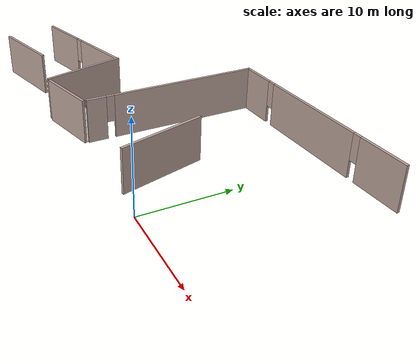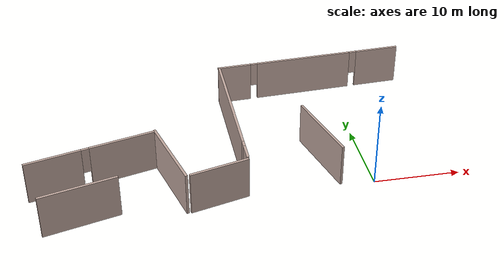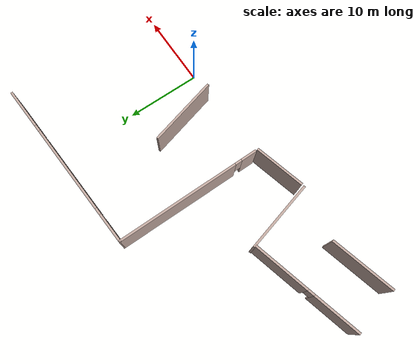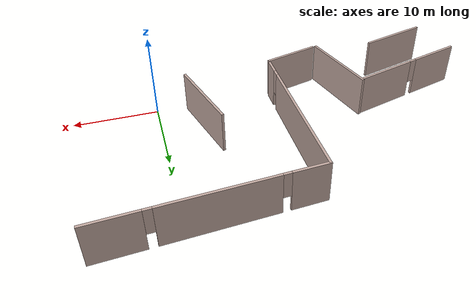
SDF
<sdf version="1.6">
 <model name="engineering_2F">
  <link name="Wall_23">
   <pose>-2.64438 20.8898 0 0 0 -3.08217</pose>
   <visual name="Wall_23_Visual_0">
    <pose>-9.13368 0 2.5 0 -0 0</pose>
    <geometry><box><size>5.59954 0.3 5</size></box></geometry>
    <material>
     <script><uri>file://media/materials/scripts/gazebo.material</uri><name>Gazebo/Grey</name></script>
     <ambient>0.760784 0.662745 0.627451 1</ambient>
     <diffuse>0.7 0.7 0.7 1</diffuse>
     <specular>0.01 0.01 0.01 1</specular>
     <emissive>0 0 0 1</emissive>
    </material>
   </visual>
   <visual name="Wall_23_Visual_2">
    <pose>9.85615 0 2.5 0 -0 0</pose>
    <geometry><box><size>4.15459 0.3 5</size></box></geometry>
    <material>
     <script><uri>file://media/materials/scripts/gazebo.material</uri><name>Gazebo/Grey</name></script>
     <ambient>0.760784 0.662745 0.627451 1</ambient>
     <diffuse>0.7 0.7 0.7 1</diffuse>
     <specular>0.01 0.01 0.01 1</specular>
     <emissive>0 0 0 1</emissive>
    </material>
   </visual>
   <visual name="Wall_23_Visual_1">
    <pose>0.722472 0 2.5 0 -0 0</pose>
    <geometry><box><size>12.3128 0.3 5</size></box></geometry>
    <material>
     <script><uri>file://media/materials/scripts/gazebo.material</uri><name>Gazebo/Grey</name></script>
     <ambient>0.760784 0.662745 0.627451 1</ambient>
     <diffuse>0.7 0.7 0.7 1</diffuse>
     <specular>0.01 0.01 0.01 1</specular>
     <emissive>0 0 0 1</emissive>
    </material>
   </visual>
   <visual name="Wall_23_Visual_3">
    <pose>-5.88391 0 3.5 0 -0 0</pose>
    <geometry><box><size>0.9 0.3 3</size></box></geometry>
    <material>
     <script><uri>file://media/materials/scripts/gazebo.material</uri><name>Gazebo/Grey</name></script>
     <ambient>0.760784 0.662745 0.627451 1</ambient>
     <diffuse>0.7 0.7 0.7 1</diffuse>
     <specular>0.01 0.01 0.01 1</specular>
     <emissive>0 0 0 1</emissive>
    </material>
   </visual>
   <visual name="Wall_23_Visual_4">
    <pose>7.32885 0 3.5 0 -0 0</pose>
    <geometry><box><size>0.9 0.3 3</size></box></geometry>
    <material>
     <script><uri>file://media/materials/scripts/gazebo.material</uri><name>Gazebo/Grey</name></script>
     <ambient>0.760784 0.662745 0.627451 1</ambient>
     <diffuse>0.7 0.7 0.7 1</diffuse>
     <specular>0.01 0.01 0.01 1</specular>
     <emissive>0 0 0 1</emissive>
    </material>
   </visual>
   <collision name="Wall_23_Collision_3">
    <pose>-5.88391 0 3.5 0 -0 0</pose>
    <geometry><box><size>0.9 0.3 3</size></box></geometry>
    <surface>
     <friction>
      <ode><mu>1</mu><mu2>1</mu2><fdir1>0 0 0</fdir1><slip1>0</slip1><slip2>0</slip2></ode>
      <torsional>
       <coefficient>1</coefficient>
       <patch_radius>0</patch_radius>
       <surface_radius>0</surface_radius>
       <use_patch_radius>1</use_patch_radius>
       <ode><slip>0</slip></ode>
      </torsional>
     </friction>
     <bounce><restitution_coefficient>0</restitution_coefficient><threshold>1e+06</threshold></bounce>
     <contact>
      <collide_without_contact>0</collide_without_contact>
      <collide_without_contact_bitmask>1</collide_without_contact_bitmask>
      <collide_bitmask>1</collide_bitmask>
      <ode>
       <soft_cfm>0</soft_cfm>
       <soft_erp>0.2</soft_erp>
       <kp>1e+13</kp>
       <kd>1</kd>
       <max_vel>0.01</max_vel>
       <min_depth>0</min_depth>
      </ode>
      <bullet>
       <split_impulse>1</split_impulse>
       <split_impulse_penetration_threshold>-0.01</split_impulse_penetration_threshold>
       <soft_cfm>0</soft_cfm>
       <soft_erp>0.2</soft_erp>
       <kp>1e+13</kp>
       <kd>1</kd>
      </bullet>
     </contact>
    </surface>
   </collision>
   <collision name="Wall_23_Collision_1">
    <pose>0.722472 0 2.5 0 -0 0</pose>
    <geometry><box><size>12.3128 0.3 5</size></box></geometry>
    <surface>
     <friction>
      <ode><mu>1</mu><mu2>1</mu2><fdir1>0 0 0</fdir1><slip1>0</slip1><slip2>0</slip2></ode>
      <torsional>
       <coefficient>1</coefficient>
       <patch_radius>0</patch_radius>
       <surface_radius>0</surface_radius>
       <use_patch_radius>1</use_patch_radius>
       <ode><slip>0</slip></ode>
      </torsional>
     </friction>
     <bounce><restitution_coefficient>0</restitution_coefficient><threshold>1e+06</threshold></bounce>
     <contact>
      <collide_without_contact>0</collide_without_contact>
      <collide_without_contact_bitmask>1</collide_without_contact_bitmask>
      <collide_bitmask>1</collide_bitmask>
      <ode>
       <soft_cfm>0</soft_cfm>
       <soft_erp>0.2</soft_erp>
       <kp>1e+13</kp>
       <kd>1</kd>
       <max_vel>0.01</max_vel>
       <min_depth>0</min_depth>
      </ode>
      <bullet>
       <split_impulse>1</split_impulse>
       <split_impulse_penetration_threshold>-0.01</split_impulse_penetration_threshold>
       <soft_cfm>0</soft_cfm>
       <soft_erp>0.2</soft_erp>
       <kp>1e+13</kp>
       <kd>1</kd>
      </bullet>
     </contact>
    </surface>
   </collision>
   <collision name="Wall_23_Collision_2">
    <pose>9.85615 0 2.5 0 -0 0</pose>
    <geometry><box><size>4.15459 0.3 5</size></box></geometry>
    <surface>
     <friction>
      <ode><mu>1</mu><mu2>1</mu2><fdir1>0 0 0</fdir1><slip1>0</slip1><slip2>0</slip2></ode>
      <torsional>
       <coefficient>1</coefficient>
       <patch_radius>0</patch_radius>
       <surface_radius>0</surface_radius>
       <use_patch_radius>1</use_patch_radius>
       <ode><slip>0</slip></ode>
      </torsional>
     </friction>
     <bounce><restitution_coefficient>0</restitution_coefficient><threshold>1e+06</threshold></bounce>
     <contact>
      <collide_without_contact>0</collide_without_contact>
      <collide_without_contact_bitmask>1</collide_without_contact_bitmask>
      <collide_bitmask>1</collide_bitmask>
      <ode>
       <soft_cfm>0</soft_cfm>
       <soft_erp>0.2</soft_erp>
       <kp>1e+13</kp>
       <kd>1</kd>
       <max_vel>0.01</max_vel>
       <min_depth>0</min_depth>
      </ode>
      <bullet>
       <split_impulse>1</split_impulse>
       <split_impulse_penetration_threshold>-0.01</split_impulse_penetration_threshold>
       <soft_cfm>0</soft_cfm>
       <soft_erp>0.2</soft_erp>
       <kp>1e+13</kp>
       <kd>1</kd>
      </bullet>
     </contact>
    </surface>
   </collision>
   <collision name="Wall_23_Collision_0">
    <pose>-9.13368 0 2.5 0 -0 0</pose>
    <geometry><box><size>5.59954 0.3 5</size></box></geometry>
    <surface>
     <friction>
      <ode><mu>1</mu><mu2>1</mu2><fdir1>0 0 0</fdir1><slip1>0</slip1><slip2>0</slip2></ode>
      <torsional>
       <coefficient>1</coefficient>
       <patch_radius>0</patch_radius>
       <surface_radius>0</surface_radius>
       <use_patch_radius>1</use_patch_radius>
       <ode><slip>0</slip></ode>
      </torsional>
     </friction>
     <bounce><restitution_coefficient>0</restitution_coefficient><threshold>1e+06</threshold></bounce>
     <contact>
      <collide_without_contact>0</collide_without_contact>
      <collide_without_contact_bitmask>1</collide_without_contact_bitmask>
      <collide_bitmask>1</collide_bitmask>
      <ode>
       <soft_cfm>0</soft_cfm>
       <soft_erp>0.2</soft_erp>
       <kp>1e+13</kp>
       <kd>1</kd>
       <max_vel>0.01</max_vel>
       <min_depth>0</min_depth>
      </ode>
      <bullet>
       <split_impulse>1</split_impulse>
       <split_impulse_penetration_threshold>-0.01</split_impulse_penetration_threshold>
       <soft_cfm>0</soft_cfm>
       <soft_erp>0.2</soft_erp>
       <kp>1e+13</kp>
       <kd>1</kd>
      </bullet>
     </contact>
    </surface>
   </collision>
   <collision name="Wall_23_Collision_4">
    <pose>7.32885 0 3.5 0 -0 0</pose>
    <geometry><box><size>0.9 0.3 3</size></box></geometry>
    <surface>
     <friction>
      <ode><mu>1</mu><mu2>1</mu2><fdir1>0 0 0</fdir1><slip1>0</slip1><slip2>0</slip2></ode>
      <torsional>
       <coefficient>1</coefficient>
       <patch_radius>0</patch_radius>
       <surface_radius>0</surface_radius>
       <use_patch_radius>1</use_patch_radius>
       <ode><slip>0</slip></ode>
      </torsional>
     </friction>
     <bounce><restitution_coefficient>0</restitution_coefficient><threshold>1e+06</threshold></bounce>
     <contact>
      <collide_without_contact>0</collide_without_contact>
      <collide_without_contact_bitmask>1</collide_without_contact_bitmask>
      <collide_bitmask>1</collide_bitmask>
      <ode>
       <soft_cfm>0</soft_cfm>
       <soft_erp>0.2</soft_erp>
       <kp>1e+13</kp>
       <kd>1</kd>
       <max_vel>0.01</max_vel>
       <min_depth>0</min_depth>
      </ode>
      <bullet>
       <split_impulse>1</split_impulse>
       <split_impulse_penetration_threshold>-0.01</split_impulse_penetration_threshold>
       <soft_cfm>0</soft_cfm>
       <soft_erp>0.2</soft_erp>
       <kp>1e+13</kp>
       <kd>1</kd>
      </bullet>
     </contact>
    </surface>
   </collision>
  </link>
  <link name="Wall_25">
   <pose>-14.3661 10.3901 0 0 0 -1.56658</pose>
   <visual name="Wall_25_Visual_1">
    <pose>8.7734 0 2.5 0 -0 0</pose>
    <geometry><box><size>2.18873 0.3 5</size></box></geometry>
    <material>
     <script><uri>file://media/materials/scripts/gazebo.material</uri><name>Gazebo/Grey</name></script>
     <ambient>0.760784 0.662745 0.627451 1</ambient>
     <diffuse>0.7 0.7 0.7 1</diffuse>
     <specular>0.01 0.01 0.01 1</specular>
     <emissive>0 0 0 1</emissive>
    </material>
   </visual>
   <visual name="Wall_25_Visual_0">
    <pose>-1.54436 0 2.5 0 -0 0</pose>
    <geometry><box><size>16.6468 0.3 5</size></box></geometry>
    <material>
     <script><uri>file://media/materials/scripts/gazebo.material</uri><name>Gazebo/Grey</name></script>
     <ambient>0.760784 0.662745 0.627451 1</ambient>
     <diffuse>0.7 0.7 0.7 1</diffuse>
     <specular>0.01 0.01 0.01 1</specular>
     <emissive>0 0 0 1</emissive>
    </material>
   </visual>
   <visual name="Wall_25_Visual_2">
    <pose>7.22904 0 3.5 0 -0 0</pose>
    <geometry><box><size>0.9 0.3 3</size></box></geometry>
    <material>
     <script><uri>file://media/materials/scripts/gazebo.material</uri><name>Gazebo/Grey</name></script>
     <ambient>0.760784 0.662745 0.627451 1</ambient>
     <diffuse>0.7 0.7 0.7 1</diffuse>
     <specular>0.01 0.01 0.01 1</specular>
     <emissive>0 0 0 1</emissive>
    </material>
   </visual>
   <collision name="Wall_25_Collision_2">
    <pose>7.22904 0 3.5 0 -0 0</pose>
    <geometry><box><size>0.9 0.3 3</size></box></geometry>
    <surface>
     <friction>
      <ode><mu>1</mu><mu2>1</mu2><fdir1>0 0 0</fdir1><slip1>0</slip1><slip2>0</slip2></ode>
      <torsional>
       <coefficient>1</coefficient>
       <patch_radius>0</patch_radius>
       <surface_radius>0</surface_radius>
       <use_patch_radius>1</use_patch_radius>
       <ode><slip>0</slip></ode>
      </torsional>
     </friction>
     <bounce><restitution_coefficient>0</restitution_coefficient><threshold>1e+06</threshold></bounce>
     <contact>
      <collide_without_contact>0</collide_without_contact>
      <collide_without_contact_bitmask>1</collide_without_contact_bitmask>
      <collide_bitmask>1</collide_bitmask>
      <ode>
       <soft_cfm>0</soft_cfm>
       <soft_erp>0.2</soft_erp>
       <kp>1e+13</kp>
       <kd>1</kd>
       <max_vel>0.01</max_vel>
       <min_depth>0</min_depth>
      </ode>
      <bullet>
       <split_impulse>1</split_impulse>
       <split_impulse_penetration_threshold>-0.01</split_impulse_penetration_threshold>
       <soft_cfm>0</soft_cfm>
       <soft_erp>0.2</soft_erp>
       <kp>1e+13</kp>
       <kd>1</kd>
      </bullet>
     </contact>
    </surface>
   </collision>
   <collision name="Wall_25_Collision_1">
    <pose>8.7734 0 2.5 0 -0 0</pose>
    <geometry><box><size>2.18873 0.3 5</size></box></geometry>
    <surface>
     <friction>
      <ode><mu>1</mu><mu2>1</mu2><fdir1>0 0 0</fdir1><slip1>0</slip1><slip2>0</slip2></ode>
      <torsional>
       <coefficient>1</coefficient>
       <patch_radius>0</patch_radius>
       <surface_radius>0</surface_radius>
       <use_patch_radius>1</use_patch_radius>
       <ode><slip>0</slip></ode>
      </torsional>
     </friction>
     <bounce><restitution_coefficient>0</restitution_coefficient><threshold>1e+06</threshold></bounce>
     <contact>
      <collide_without_contact>0</collide_without_contact>
      <collide_without_contact_bitmask>1</collide_without_contact_bitmask>
      <collide_bitmask>1</collide_bitmask>
      <ode>
       <soft_cfm>0</soft_cfm>
       <soft_erp>0.2</soft_erp>
       <kp>1e+13</kp>
       <kd>1</kd>
       <max_vel>0.01</max_vel>
       <min_depth>0</min_depth>
      </ode>
      <bullet>
       <split_impulse>1</split_impulse>
       <split_impulse_penetration_threshold>-0.01</split_impulse_penetration_threshold>
       <soft_cfm>0</soft_cfm>
       <soft_erp>0.2</soft_erp>
       <kp>1e+13</kp>
       <kd>1</kd>
      </bullet>
     </contact>
    </surface>
   </collision>
   <collision name="Wall_25_Collision_0">
    <pose>-1.54436 0 2.5 0 -0 0</pose>
    <geometry><box><size>16.6468 0.3 5</size></box></geometry>
    <surface>
     <friction>
      <ode><mu>1</mu><mu2>1</mu2><fdir1>0 0 0</fdir1><slip1>0</slip1><slip2>0</slip2></ode>
      <torsional>
       <coefficient>1</coefficient>
       <patch_radius>0</patch_radius>
       <surface_radius>0</surface_radius>
       <use_patch_radius>1</use_patch_radius>
       <ode><slip>0</slip></ode>
      </torsional>
     </friction>
     <bounce><restitution_coefficient>0</restitution_coefficient><threshold>1e+06</threshold></bounce>
     <contact>
      <collide_without_contact>0</collide_without_contact>
      <collide_without_contact_bitmask>1</collide_without_contact_bitmask>
      <collide_bitmask>1</collide_bitmask>
      <ode>
       <soft_cfm>0</soft_cfm>
       <soft_erp>0.2</soft_erp>
       <kp>1e+13</kp>
       <kd>1</kd>
       <max_vel>0.01</max_vel>
       <min_depth>0</min_depth>
      </ode>
      <bullet>
       <split_impulse>1</split_impulse>
       <split_impulse_penetration_threshold>-0.01</split_impulse_penetration_threshold>
       <soft_cfm>0</soft_cfm>
       <soft_erp>0.2</soft_erp>
       <kp>1e+13</kp>
       <kd>1</kd>
      </bullet>
     </contact>
    </surface>
   </collision>
  </link>
  <link name="Wall_31">
   <pose>-30.9302 5.46088 0 0 0 -2.87977</pose>
   <visual name="Wall_31_Visual_2">
    <pose>0.628976 0 3.5 0 -0 0</pose>
    <geometry><box><size>0.9 0.3 3</size></box></geometry>
    <material>
     <script><uri>file://media/materials/scripts/gazebo.material</uri><name>Gazebo/Grey</name></script>
     <ambient>0.760784 0.662745 0.627451 1</ambient>
     <diffuse>0.7 0.7 0.7 1</diffuse>
     <specular>0.01 0.01 0.01 1</specular>
     <emissive>0 0 0 1</emissive>
    </material>
   </visual>
   <visual name="Wall_31_Visual_0">
    <pose>-3.63546 0 2.5 0 -0 0</pose>
    <geometry><box><size>7.62887 0.3 5</size></box></geometry>
    <material>
     <script><uri>file://media/materials/scripts/gazebo.material</uri><name>Gazebo/Grey</name></script>
     <ambient>0.760784 0.662745 0.627451 1</ambient>
     <diffuse>0.7 0.7 0.7 1</diffuse>
     <specular>0.01 0.01 0.01 1</specular>
     <emissive>0 0 0 1</emissive>
    </material>
   </visual>
   <visual name="Wall_31_Visual_1">
    <pose>4.26443 0 2.5 0 -0 0</pose>
    <geometry><box><size>6.37091 0.3 5</size></box></geometry>
    <material>
     <script><uri>file://media/materials/scripts/gazebo.material</uri><name>Gazebo/Grey</name></script>
     <ambient>0.760784 0.662745 0.627451 1</ambient>
     <diffuse>0.7 0.7 0.7 1</diffuse>
     <specular>0.01 0.01 0.01 1</specular>
     <emissive>0 0 0 1</emissive>
    </material>
   </visual>
   <collision name="Wall_31_Collision_2">
    <pose>0.628976 0 3.5 0 -0 0</pose>
    <geometry><box><size>0.9 0.3 3</size></box></geometry>
    <surface>
     <friction>
      <ode><mu>1</mu><mu2>1</mu2><fdir1>0 0 0</fdir1><slip1>0</slip1><slip2>0</slip2></ode>
      <torsional>
       <coefficient>1</coefficient>
       <patch_radius>0</patch_radius>
       <surface_radius>0</surface_radius>
       <use_patch_radius>1</use_patch_radius>
       <ode><slip>0</slip></ode>
      </torsional>
     </friction>
     <bounce><restitution_coefficient>0</restitution_coefficient><threshold>1e+06</threshold></bounce>
     <contact>
      <collide_without_contact>0</collide_without_contact>
      <collide_without_contact_bitmask>1</collide_without_contact_bitmask>
      <collide_bitmask>1</collide_bitmask>
      <ode>
       <soft_cfm>0</soft_cfm>
       <soft_erp>0.2</soft_erp>
       <kp>1e+13</kp>
       <kd>1</kd>
       <max_vel>0.01</max_vel>
       <min_depth>0</min_depth>
      </ode>
      <bullet>
       <split_impulse>1</split_impulse>
       <split_impulse_penetration_threshold>-0.01</split_impulse_penetration_threshold>
       <soft_cfm>0</soft_cfm>
       <soft_erp>0.2</soft_erp>
       <kp>1e+13</kp>
       <kd>1</kd>
      </bullet>
     </contact>
    </surface>
   </collision>
   <collision name="Wall_31_Collision_1">
    <pose>4.26443 0 2.5 0 -0 0</pose>
    <geometry><box><size>6.37091 0.3 5</size></box></geometry>
    <surface>
     <friction>
      <ode><mu>1</mu><mu2>1</mu2><fdir1>0 0 0</fdir1><slip1>0</slip1><slip2>0</slip2></ode>
      <torsional>
       <coefficient>1</coefficient>
       <patch_radius>0</patch_radius>
       <surface_radius>0</surface_radius>
       <use_patch_radius>1</use_patch_radius>
       <ode><slip>0</slip></ode>
      </torsional>
     </friction>
     <bounce><restitution_coefficient>0</restitution_coefficient><threshold>1e+06</threshold></bounce>
     <contact>
      <collide_without_contact>0</collide_without_contact>
      <collide_without_contact_bitmask>1</collide_without_contact_bitmask>
      <collide_bitmask>1</collide_bitmask>
      <ode>
       <soft_cfm>0</soft_cfm>
       <soft_erp>0.2</soft_erp>
       <kp>1e+13</kp>
       <kd>1</kd>
       <max_vel>0.01</max_vel>
       <min_depth>0</min_depth>
      </ode>
      <bullet>
       <split_impulse>1</split_impulse>
       <split_impulse_penetration_threshold>-0.01</split_impulse_penetration_threshold>
       <soft_cfm>0</soft_cfm>
       <soft_erp>0.2</soft_erp>
       <kp>1e+13</kp>
       <kd>1</kd>
      </bullet>
     </contact>
    </surface>
   </collision>
   <collision name="Wall_31_Collision_0">
    <pose>-3.63546 0 2.5 0 -0 0</pose>
    <geometry><box><size>7.62887 0.3 5</size></box></geometry>
    <surface>
     <friction>
      <ode><mu>1</mu><mu2>1</mu2><fdir1>0 0 0</fdir1><slip1>0</slip1><slip2>0</slip2></ode>
      <torsional>
       <coefficient>1</coefficient>
       <patch_radius>0</patch_radius>
       <surface_radius>0</surface_radius>
       <use_patch_radius>1</use_patch_radius>
       <ode><slip>0</slip></ode>
      </torsional>
     </friction>
     <bounce><restitution_coefficient>0</restitution_coefficient><threshold>1e+06</threshold></bounce>
     <contact>
      <collide_without_contact>0</collide_without_contact>
      <collide_without_contact_bitmask>1</collide_without_contact_bitmask>
      <collide_bitmask>1</collide_bitmask>
      <ode>
       <soft_cfm>0</soft_cfm>
       <soft_erp>0.2</soft_erp>
       <kp>1e+13</kp>
       <kd>1</kd>
       <max_vel>0.01</max_vel>
       <min_depth>0</min_depth>
      </ode>
      <bullet>
       <split_impulse>1</split_impulse>
       <split_impulse_penetration_threshold>-0.01</split_impulse_penetration_threshold>
       <soft_cfm>0</soft_cfm>
       <soft_erp>0.2</soft_erp>
       <kp>1e+13</kp>
       <kd>1</kd>
      </bullet>
     </contact>
    </surface>
   </collision>
  </link>
  <link name="Wall_56">
   <pose>-32.4417 -1.49712 0 0 -0 0.261798</pose>
   <visual name="Wall_56_Visual">
    <pose>0 0 2.5 0 -0 0</pose>
    <geometry><box><size>8.64972 0.3 5</size></box></geometry>
    <material>
     <script><uri>file://media/materials/scripts/gazebo.material</uri><name>Gazebo/Grey</name></script>
     <ambient>0.760784 0.662745 0.627451 1</ambient>
     <diffuse>0.7 0.7 0.7 1</diffuse>
     <specular>0.01 0.01 0.01 1</specular>
     <emissive>0 0 0 1</emissive>
    </material>
   </visual>
   <collision name="Wall_56_Collision">
    <pose>0 0 2.5 0 -0 0</pose>
    <geometry><box><size>8.64972 0.3 5</size></box></geometry>
    <surface>
     <friction>
      <ode><mu>1</mu><mu2>1</mu2><fdir1>0 0 0</fdir1><slip1>0</slip1><slip2>0</slip2></ode>
      <torsional>
       <coefficient>1</coefficient>
       <patch_radius>0</patch_radius>
       <surface_radius>0</surface_radius>
       <use_patch_radius>1</use_patch_radius>
       <ode><slip>0</slip></ode>
      </torsional>
     </friction>
     <bounce><restitution_coefficient>0</restitution_coefficient><threshold>1e+06</threshold></bounce>
     <contact>
      <collide_without_contact>0</collide_without_contact>
      <collide_without_contact_bitmask>1</collide_without_contact_bitmask>
      <collide_bitmask>1</collide_bitmask>
      <ode>
       <soft_cfm>0</soft_cfm>
       <soft_erp>0.2</soft_erp>
       <kp>1e+13</kp>
       <kd>1</kd>
       <max_vel>0.01</max_vel>
       <min_depth>0</min_depth>
      </ode>
      <bullet>
       <split_impulse>1</split_impulse>
       <split_impulse_penetration_threshold>-0.01</split_impulse_penetration_threshold>
       <soft_cfm>0</soft_cfm>
       <soft_erp>0.2</soft_erp>
       <kp>1e+13</kp>
       <kd>1</kd>
      </bullet>
     </contact>
    </surface>
   </collision>
  </link>
  <link name="Wall_56_clone">
   <pose>-17.5999 -0.662634 0 0 -0 0.261798</pose>
   <inertial>
    <inertia><ixx>nan</ixx><ixy>0</ixy><ixz>0</ixz><iyy>nan</iyy><iyz>0</iyz><izz>nan</izz></inertia>
    <mass>0</mass>
   </inertial>
   <visual name="Wall_56_Visual">
    <pose>0 0 2.5 0 -0 0</pose>
    <geometry><box><size>6.86207 0.3 5</size></box></geometry>
    <material>
     <script><uri>file://media/materials/scripts/gazebo.material</uri><name>Gazebo/Grey</name></script>
     <ambient>0.760784 0.662745 0.627451 1</ambient>
     <diffuse>0.7 0.7 0.7 1</diffuse>
     <specular>0.01 0.01 0.01 1</specular>
     <emissive>0 0 0 1</emissive>
     <shader type="pixel"/>
    </material>
   </visual>
   <collision name="Wall_56_Collision">
    <pose>0 0 2.5 0 -0 0</pose>
    <geometry><box><size>6.86207 0.3 5</size></box></geometry>
    <surface>
     <friction>
      <ode><mu>1</mu><mu2>1</mu2><fdir1>0 0 0</fdir1><slip1>0</slip1><slip2>0</slip2></ode>
      <torsional>
       <coefficient>1</coefficient>
       <patch_radius>0</patch_radius>
       <surface_radius>0</surface_radius>
       <use_patch_radius>1</use_patch_radius>
       <ode><slip>0</slip></ode>
      </torsional>
     </friction>
     <bounce><restitution_coefficient>0</restitution_coefficient><threshold>1e+06</threshold></bounce>
     <contact>
      <collide_without_contact>0</collide_without_contact>
      <collide_without_contact_bitmask>1</collide_without_contact_bitmask>
      <collide_bitmask>1</collide_bitmask>
      <ode>
       <soft_cfm>0</soft_cfm>
       <soft_erp>0.2</soft_erp>
       <kp>1e+13</kp>
       <kd>1</kd>
       <max_vel>0.01</max_vel>
       <min_depth>0</min_depth>
      </ode>
      <bullet>
       <split_impulse>1</split_impulse>
       <split_impulse_penetration_threshold>-0.01</split_impulse_penetration_threshold>
       <soft_cfm>0</soft_cfm>
       <soft_erp>0.2</soft_erp>
       <kp>1e+13</kp>
       <kd>1</kd>
      </bullet>
     </contact>
    </surface>
   </collision>
  </link>
  <link name="Wall_57_clone">
   <pose>-22.4924 3 0 0 0 -1.3107</pose>
   <visual name="Wall_57_Visual">
    <pose>0 0 2.5 0 -0 0</pose>
    <geometry><box><size>9.63992 0.3 5</size></box></geometry>
    <material>
     <script><uri>file://media/materials/scripts/gazebo.material</uri><name>Gazebo/Grey</name></script>
     <ambient>0.760784 0.662745 0.627451 1</ambient>
     <diffuse>0.7 0.7 0.7 1</diffuse>
     <specular>0.01 0.01 0.01 1</specular>
     <emissive>0 0 0 1</emissive>
     <shader type="pixel"/>
    </material>
   </visual>
   <collision name="Wall_57_Collision">
    <pose>0 0 2.5 0 -0 0</pose>
    <geometry><box><size>9.63992 0.3 5</size></box></geometry>
    <surface>
     <friction>
      <ode><mu>1</mu><mu2>1</mu2><fdir1>0 0 0</fdir1><slip1>0</slip1><slip2>0</slip2></ode>
      <torsional>
       <coefficient>1</coefficient>
       <patch_radius>0</patch_radius>
       <surface_radius>0</surface_radius>
       <use_patch_radius>1</use_patch_radius>
       <ode><slip>0</slip></ode>
      </torsional>
     </friction>
     <bounce><restitution_coefficient>0</restitution_coefficient><threshold>1e+06</threshold></bounce>
     <contact>
      <collide_without_contact>0</collide_without_contact>
      <collide_without_contact_bitmask>1</collide_without_contact_bitmask>
      <collide_bitmask>1</collide_bitmask>
      <ode>
       <soft_cfm>0</soft_cfm>
       <soft_erp>0.2</soft_erp>
       <kp>1e+13</kp>
       <kd>1</kd>
       <max_vel>0.01</max_vel>
       <min_depth>0</min_depth>
      </ode>
      <bullet>
       <split_impulse>1</split_impulse>
       <split_impulse_penetration_threshold>-0.01</split_impulse_penetration_threshold>
       <soft_cfm>0</soft_cfm>
       <soft_erp>0.2</soft_erp>
       <kp>1e+13</kp>
       <kd>1</kd>
      </bullet>
     </contact>
    </surface>
   </collision>
  </link>
  <link name="Wall_57_clone_1">
   <pose>-5 5 0 0 0 -1.3107</pose>
   <visual name="Wall_57_Visual">
    <pose>0 0 2.5 0 -0 0</pose>
    <geometry><box><size>9.63992 0.3 5</size></box></geometry>
    <material>
     <script><uri>file://media/materials/scripts/gazebo.material</uri><name>Gazebo/Grey</name></script>
     <ambient>0.760784 0.662745 0.627451 1</ambient>
     <diffuse>0.7 0.7 0.7 1</diffuse>
     <specular>0.01 0.01 0.01 1</specular>
     <emissive>0 0 0 1</emissive>
     <shader type="pixel"/>
    </material>
   </visual>
   <collision name="Wall_57_Collision">
    <pose>0 0 2.5 0 -0 0</pose>
    <geometry><box><size>9.63992 0.3 5</size></box></geometry>
    <surface>
     <friction>
      <ode><mu>1</mu><mu2>1</mu2><fdir1>0 0 0</fdir1><slip1>0</slip1><slip2>0</slip2></ode>
      <torsional>
       <coefficient>1</coefficient>
       <patch_radius>0</patch_radius>
       <surface_radius>0</surface_radius>
       <use_patch_radius>1</use_patch_radius>
       <ode><slip>0</slip></ode>
      </torsional>
     </friction>
     <bounce><restitution_coefficient>0</restitution_coefficient><threshold>1e+06</threshold></bounce>
     <contact>
      <collide_without_contact>0</collide_without_contact>
      <collide_without_contact_bitmask>1</collide_without_contact_bitmask>
      <collide_bitmask>1</collide_bitmask>
      <ode>
       <soft_cfm>0</soft_cfm>
       <soft_erp>0.2</soft_erp>
       <kp>1e+13</kp>
       <kd>1</kd>
       <max_vel>0.01</max_vel>
       <min_depth>0</min_depth>
      </ode>
      <bullet>
       <split_impulse>1</split_impulse>
       <split_impulse_penetration_threshold>-0.01</split_impulse_penetration_threshold>
       <soft_cfm>0</soft_cfm>
       <soft_erp>0.2</soft_erp>
       <kp>1e+13</kp>
       <kd>1</kd>
      </bullet>
     </contact>
    </surface>
   </collision>
  </link>
  <static>1</static>
 </model>
</sdf>
